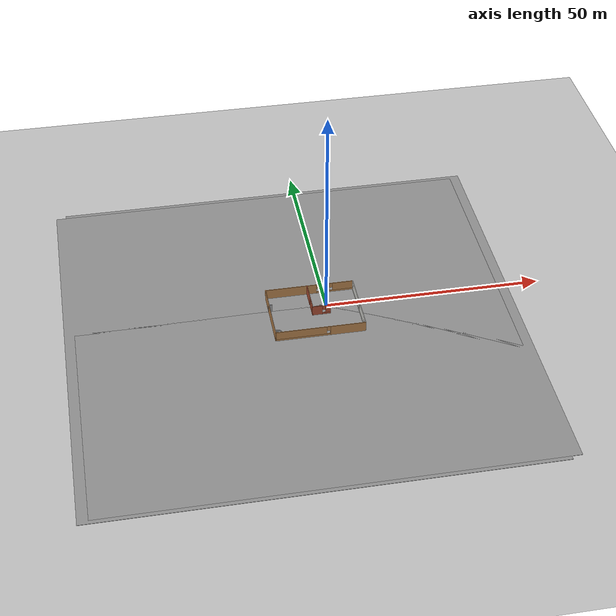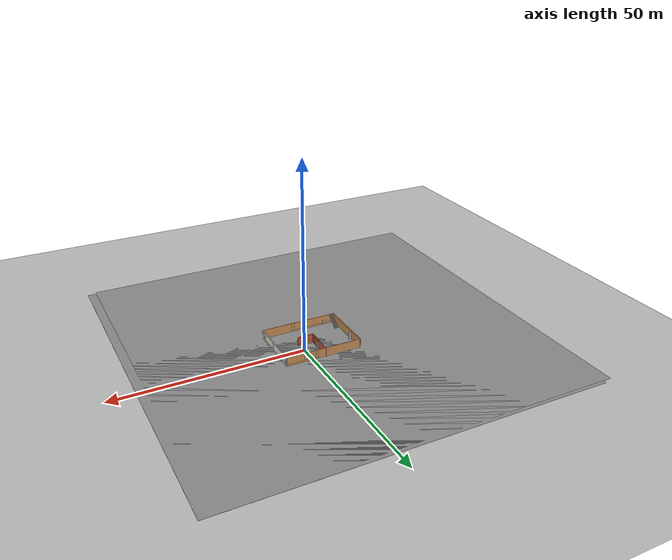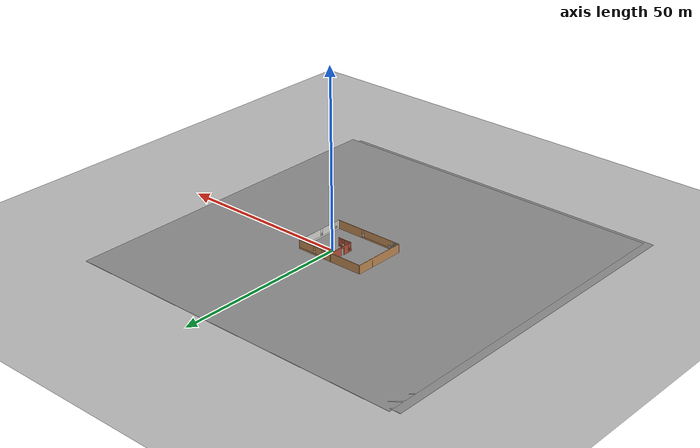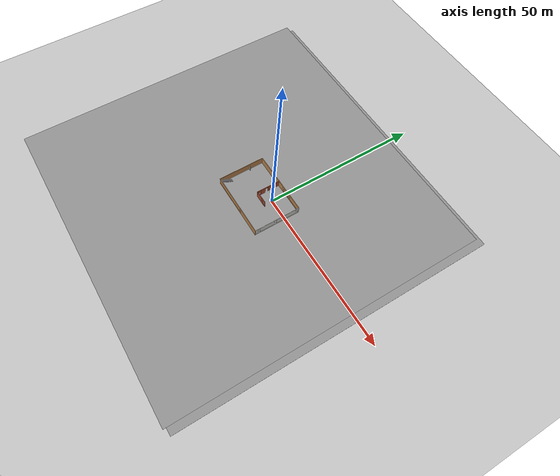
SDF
<sdf version="1.6">
 <world name="default">
  <model name="ground_plane">
   <static>1</static>
   <link name="link">
    <collision name="collision">
     <geometry><plane><normal>0 0 1</normal><size>100 100</size></plane></geometry>
     <surface><friction><ode><mu>100</mu><mu2>50</mu2></ode></friction></surface>
    </collision>
    <visual name="visual">
     <cast_shadows>0</cast_shadows>
     <geometry><plane><normal>0 0 1</normal><size>100 100</size></plane></geometry>
     <material>
      <script><uri>file://media/materials/scripts/gazebo.material</uri><name>Gazebo/Grey</name></script>
     </material>
    </visual>
   </link>
  </model>
  <model name="map_my_world.world">
   <pose>-3.14852 -2.72011 0 0 -0 0</pose>
   <link name="Door_0">
    <collision name="Door_0_Collision">
     <geometry><box><size>0.9 0.17 2</size></box></geometry>
     <pose>0 0 1 0 -0 0</pose>
    </collision>
    <visual name="Door_0_Visual">
     <pose>0 0 1 0 -0 0</pose>
     <geometry><box><size>0.9 0.17 2</size></box></geometry>
     <material>
      <script><uri>file://media/materials/scripts/gazebo.material</uri><name>Gazebo/Grey</name></script>
     </material>
    </visual>
    <pose>-9.84195 2.74935 0 0 -0 0</pose>
   </link>
   <link name="Stairs_0">
    <visual name="Stairs_0_Visual_0">
     <pose>-9.28366 -3.99162 0.083333 0 -0 0</pose>
     <geometry><box><size>1 0.233333 0.166667</size></box></geometry>
     <material>
      <script><uri>file://media/materials/scripts/gazebo.material</uri><name>Gazebo/Grey</name></script>
      <ambient>1 1 1 1</ambient>
     </material>
    </visual>
    <collision name="Stairs_0_Collision_0">
     <geometry><box><size>1 0.233333 0.166667</size></box></geometry>
     <pose>-9.28366 -3.99162 0.083333 0 -0 0</pose>
    </collision>
    <visual name="Stairs_0_Visual_1">
     <pose>-9.28366 -4.22496 0.25 0 -0 0</pose>
     <geometry><box><size>1 0.233333 0.166667</size></box></geometry>
     <material>
      <script><uri>file://media/materials/scripts/gazebo.material</uri><name>Gazebo/Grey</name></script>
      <ambient>1 1 1 1</ambient>
     </material>
    </visual>
    <collision name="Stairs_0_Collision_1">
     <geometry><box><size>1 0.233333 0.166667</size></box></geometry>
     <pose>-9.28366 -4.22496 0.25 0 -0 0</pose>
    </collision>
    <visual name="Stairs_0_Visual_2">
     <pose>-9.28366 -4.45829 0.416667 0 -0 0</pose>
     <geometry><box><size>1 0.233333 0.166667</size></box></geometry>
     <material>
      <script><uri>file://media/materials/scripts/gazebo.material</uri><name>Gazebo/Grey</name></script>
      <ambient>1 1 1 1</ambient>
     </material>
    </visual>
    <collision name="Stairs_0_Collision_2">
     <geometry><box><size>1 0.233333 0.166667</size></box></geometry>
     <pose>-9.28366 -4.45829 0.416667 0 -0 0</pose>
    </collision>
    <visual name="Stairs_0_Visual_3">
     <pose>-9.28366 -4.69162 0.583333 0 -0 0</pose>
     <geometry><box><size>1 0.233333 0.166667</size></box></geometry>
     <material>
      <script><uri>file://media/materials/scripts/gazebo.material</uri><name>Gazebo/Grey</name></script>
      <ambient>1 1 1 1</ambient>
     </material>
    </visual>
    <collision name="Stairs_0_Collision_3">
     <geometry><box><size>1 0.233333 0.166667</size></box></geometry>
     <pose>-9.28366 -4.69162 0.583333 0 -0 0</pose>
    </collision>
    <visual name="Stairs_0_Visual_4">
     <pose>-9.28366 -4.92496 0.75 0 -0 0</pose>
     <geometry><box><size>1 0.233333 0.166667</size></box></geometry>
     <material>
      <script><uri>file://media/materials/scripts/gazebo.material</uri><name>Gazebo/Grey</name></script>
      <ambient>1 1 1 1</ambient>
     </material>
    </visual>
    <collision name="Stairs_0_Collision_4">
     <geometry><box><size>1 0.233333 0.166667</size></box></geometry>
     <pose>-9.28366 -4.92496 0.75 0 -0 0</pose>
    </collision>
    <visual name="Stairs_0_Visual_5">
     <pose>-9.28366 -5.15829 0.916667 0 -0 0</pose>
     <geometry><box><size>1 0.233333 0.166667</size></box></geometry>
     <material>
      <script><uri>file://media/materials/scripts/gazebo.material</uri><name>Gazebo/Grey</name></script>
      <ambient>1 1 1 1</ambient>
     </material>
    </visual>
    <collision name="Stairs_0_Collision_5">
     <geometry><box><size>1 0.233333 0.166667</size></box></geometry>
     <pose>-9.28366 -5.15829 0.916667 0 -0 0</pose>
    </collision>
    <visual name="Stairs_0_Visual_6">
     <pose>-9.28366 -5.39162 1.08333 0 -0 0</pose>
     <geometry><box><size>1 0.233333 0.166667</size></box></geometry>
     <material>
      <script><uri>file://media/materials/scripts/gazebo.material</uri><name>Gazebo/Grey</name></script>
      <ambient>1 1 1 1</ambient>
     </material>
    </visual>
    <collision name="Stairs_0_Collision_6">
     <geometry><box><size>1 0.233333 0.166667</size></box></geometry>
     <pose>-9.28366 -5.39162 1.08333 0 -0 0</pose>
    </collision>
    <visual name="Stairs_0_Visual_7">
     <pose>-9.28366 -5.62496 1.25 0 -0 0</pose>
     <geometry><box><size>1 0.233333 0.166667</size></box></geometry>
     <material>
      <script><uri>file://media/materials/scripts/gazebo.material</uri><name>Gazebo/Grey</name></script>
      <ambient>1 1 1 1</ambient>
     </material>
    </visual>
    <collision name="Stairs_0_Collision_7">
     <geometry><box><size>1 0.233333 0.166667</size></box></geometry>
     <pose>-9.28366 -5.62496 1.25 0 -0 0</pose>
    </collision>
    <visual name="Stairs_0_Visual_8">
     <pose>-9.28366 -5.85829 1.41667 0 -0 0</pose>
     <geometry><box><size>1 0.233333 0.166667</size></box></geometry>
     <material>
      <script><uri>file://media/materials/scripts/gazebo.material</uri><name>Gazebo/Grey</name></script>
      <ambient>1 1 1 1</ambient>
     </material>
    </visual>
    <collision name="Stairs_0_Collision_8">
     <geometry><box><size>1 0.233333 0.166667</size></box></geometry>
     <pose>-9.28366 -5.85829 1.41667 0 -0 0</pose>
    </collision>
    <visual name="Stairs_0_Visual_9">
     <pose>-9.28366 -6.09162 1.58333 0 -0 0</pose>
     <geometry><box><size>1 0.233333 0.166667</size></box></geometry>
     <material>
      <script><uri>file://media/materials/scripts/gazebo.material</uri><name>Gazebo/Grey</name></script>
      <ambient>1 1 1 1</ambient>
     </material>
    </visual>
    <collision name="Stairs_0_Collision_9">
     <geometry><box><size>1 0.233333 0.166667</size></box></geometry>
     <pose>-9.28366 -6.09162 1.58333 0 -0 0</pose>
    </collision>
    <visual name="Stairs_0_Visual_10">
     <pose>-9.28366 -6.32496 1.75 0 -0 0</pose>
     <geometry><box><size>1 0.233333 0.166667</size></box></geometry>
     <material>
      <script><uri>file://media/materials/scripts/gazebo.material</uri><name>Gazebo/Grey</name></script>
      <ambient>1 1 1 1</ambient>
     </material>
    </visual>
    <collision name="Stairs_0_Collision_10">
     <geometry><box><size>1 0.233333 0.166667</size></box></geometry>
     <pose>-9.28366 -6.32496 1.75 0 -0 0</pose>
    </collision>
    <visual name="Stairs_0_Visual_11">
     <pose>-9.28366 -6.55829 1.91667 0 -0 0</pose>
     <geometry><box><size>1 0.233333 0.166667</size></box></geometry>
     <material>
      <script><uri>file://media/materials/scripts/gazebo.material</uri><name>Gazebo/Grey</name></script>
      <ambient>1 1 1 1</ambient>
     </material>
    </visual>
    <collision name="Stairs_0_Collision_11">
     <geometry><box><size>1 0.233333 0.166667</size></box></geometry>
     <pose>-9.28366 -6.55829 1.91667 0 -0 0</pose>
    </collision>
    <visual name="Stairs_0_Visual_12">
     <pose>-9.28366 -6.79162 2.08333 0 -0 0</pose>
     <geometry><box><size>1 0.233333 0.166667</size></box></geometry>
     <material>
      <script><uri>file://media/materials/scripts/gazebo.material</uri><name>Gazebo/Grey</name></script>
      <ambient>1 1 1 1</ambient>
     </material>
    </visual>
    <collision name="Stairs_0_Collision_12">
     <geometry><box><size>1 0.233333 0.166667</size></box></geometry>
     <pose>-9.28366 -6.79162 2.08333 0 -0 0</pose>
    </collision>
    <visual name="Stairs_0_Visual_13">
     <pose>-9.28366 -7.02496 2.25 0 -0 0</pose>
     <geometry><box><size>1 0.233333 0.166667</size></box></geometry>
     <material>
      <script><uri>file://media/materials/scripts/gazebo.material</uri><name>Gazebo/Grey</name></script>
      <ambient>1 1 1 1</ambient>
     </material>
    </visual>
    <collision name="Stairs_0_Collision_13">
     <geometry><box><size>1 0.233333 0.166667</size></box></geometry>
     <pose>-9.28366 -7.02496 2.25 0 -0 0</pose>
    </collision>
    <visual name="Stairs_0_Visual_14">
     <pose>-9.28366 -7.25829 2.41667 0 -0 0</pose>
     <geometry><box><size>1 0.233333 0.166667</size></box></geometry>
     <material>
      <script><uri>file://media/materials/scripts/gazebo.material</uri><name>Gazebo/Grey</name></script>
      <ambient>1 1 1 1</ambient>
     </material>
    </visual>
    <collision name="Stairs_0_Collision_14">
     <geometry><box><size>1 0.233333 0.166667</size></box></geometry>
     <pose>-9.28366 -7.25829 2.41667 0 -0 0</pose>
    </collision>
   </link>
   <link name="Wall_11">
    <pose>0.115 7.40174 0 0 -0 0</pose>
    <visual name="Wall_11_Visual_0">
     <pose>-4.30918 0 1.25 0 -0 0</pose>
     <geometry><box><size>11.6316 0.15 2.5</size></box></geometry>
     <material>
      <script><uri>file://media/materials/scripts/gazebo.material</uri><name>Gazebo/Wood</name></script>
      <ambient>0.435294 0.796078 0.67451 1</ambient>
     </material>
    </visual>
    <collision name="Wall_11_Collision_0">
     <geometry><box><size>11.6316 0.15 2.5</size></box></geometry>
     <pose>-4.30918 0 1.25 0 -0 0</pose>
    </collision>
    <visual name="Wall_11_Visual_1">
     <pose>5.81582 0 0.25 0 -0 0</pose>
     <geometry><box><size>8.61835 0.15 0.5</size></box></geometry>
     <material>
      <script><uri>file://media/materials/scripts/gazebo.material</uri><name>Gazebo/Wood</name></script>
      <ambient>0.435294 0.796078 0.67451 1</ambient>
     </material>
    </visual>
    <collision name="Wall_11_Collision_1">
     <geometry><box><size>8.61835 0.15 0.5</size></box></geometry>
     <pose>5.81582 0 0.25 0 -0 0</pose>
    </collision>
    <visual name="Wall_11_Visual_2">
     <pose>3.41867 0 1.5 0 -0 0</pose>
     <geometry><box><size>2.22405 0.15 2</size></box></geometry>
     <material>
      <script><uri>file://media/materials/scripts/gazebo.material</uri><name>Gazebo/Wood</name></script>
      <ambient>0.435294 0.796078 0.67451 1</ambient>
     </material>
    </visual>
    <collision name="Wall_11_Collision_2">
     <geometry><box><size>2.22405 0.15 2</size></box></geometry>
     <pose>3.41867 0 1.5 0 -0 0</pose>
    </collision>
    <visual name="Wall_11_Visual_3">
     <pose>7.72785 0 1.5 0 -0 0</pose>
     <geometry><box><size>4.7943 0.15 2</size></box></geometry>
     <material>
      <script><uri>file://media/materials/scripts/gazebo.material</uri><name>Gazebo/Wood</name></script>
      <ambient>0.435294 0.796078 0.67451 1</ambient>
     </material>
    </visual>
    <collision name="Wall_11_Collision_3">
     <geometry><box><size>4.7943 0.15 2</size></box></geometry>
     <pose>7.72785 0 1.5 0 -0 0</pose>
    </collision>
    <visual name="Wall_11_Visual_4">
     <pose>1.90665 0 1.9 0 -0 0</pose>
     <geometry><box><size>0.8 0.15 1.2</size></box></geometry>
     <material>
      <script><uri>file://media/materials/scripts/gazebo.material</uri><name>Gazebo/Wood</name></script>
      <ambient>0.435294 0.796078 0.67451 1</ambient>
     </material>
    </visual>
    <collision name="Wall_11_Collision_4">
     <geometry><box><size>0.8 0.15 1.2</size></box></geometry>
     <pose>1.90665 0 1.9 0 -0 0</pose>
    </collision>
    <visual name="Wall_11_Visual_5">
     <pose>4.9307 0 1.9 0 -0 0</pose>
     <geometry><box><size>0.8 0.15 1.2</size></box></geometry>
     <material>
      <script><uri>file://media/materials/scripts/gazebo.material</uri><name>Gazebo/Wood</name></script>
      <ambient>0.435294 0.796078 0.67451 1</ambient>
     </material>
    </visual>
    <collision name="Wall_11_Collision_5">
     <geometry><box><size>0.8 0.15 1.2</size></box></geometry>
     <pose>4.9307 0 1.9 0 -0 0</pose>
    </collision>
   </link>
   <link name="Wall_12">
    <collision name="Wall_12_Collision">
     <geometry><box><size>0.16 0.15 2.5</size></box></geometry>
     <pose>0 0 1.25 0 -0 0</pose>
    </collision>
    <visual name="Wall_12_Visual">
     <pose>0 0 1.25 0 -0 0</pose>
     <geometry><box><size>0.16 0.15 2.5</size></box></geometry>
     <material>
      <script><uri>file://media/materials/scripts/gazebo.material</uri><name>Gazebo/Grey</name></script>
      <ambient>1 1 1 1</ambient>
     </material>
    </visual>
    <pose>10.17 7.40174 0 0 -0 0</pose>
   </link>
   <link name="Wall_13">
    <pose>10.175 -0.023262 0 0 0 -1.5708</pose>
    <visual name="Wall_13_Visual_0">
     <pose>-7.33683 0 1.25 0 -0 0</pose>
     <geometry><box><size>0.326335 0.15 2.5</size></box></geometry>
     <material>
      <script><uri>file://media/materials/scripts/gazebo.material</uri><name>Gazebo/CeilingTiled</name></script>
      <ambient>1 1 1 1</ambient>
     </material>
    </visual>
    <collision name="Wall_13_Collision_0">
     <geometry><box><size>0.326335 0.15 2.5</size></box></geometry>
     <pose>-7.33683 0 1.25 0 -0 0</pose>
    </collision>
    <visual name="Wall_13_Visual_1">
     <pose>0.163168 0 0.25 0 -0 0</pose>
     <geometry><box><size>14.6737 0.15 0.5</size></box></geometry>
     <material>
      <script><uri>file://media/materials/scripts/gazebo.material</uri><name>Gazebo/CeilingTiled</name></script>
      <ambient>1 1 1 1</ambient>
     </material>
    </visual>
    <collision name="Wall_13_Collision_1">
     <geometry><box><size>14.6737 0.15 0.5</size></box></geometry>
     <pose>0.163168 0 0.25 0 -0 0</pose>
    </collision>
    <visual name="Wall_13_Visual_2">
     <pose>-3.05175 0 1.5 0 -0 0</pose>
     <geometry><box><size>6.64383 0.15 2</size></box></geometry>
     <material>
      <script><uri>file://media/materials/scripts/gazebo.material</uri><name>Gazebo/CeilingTiled</name></script>
      <ambient>1 1 1 1</ambient>
     </material>
    </visual>
    <collision name="Wall_13_Collision_2">
     <geometry><box><size>6.64383 0.15 2</size></box></geometry>
     <pose>-3.05175 0 1.5 0 -0 0</pose>
    </collision>
    <visual name="Wall_13_Visual_3">
     <pose>3.41507 0 1.5 0 -0 0</pose>
     <geometry><box><size>4.68982 0.15 2</size></box></geometry>
     <material>
      <script><uri>file://media/materials/scripts/gazebo.material</uri><name>Gazebo/CeilingTiled</name></script>
      <ambient>1 1 1 1</ambient>
     </material>
    </visual>
    <collision name="Wall_13_Collision_3">
     <geometry><box><size>4.68982 0.15 2</size></box></geometry>
     <pose>3.41507 0 1.5 0 -0 0</pose>
    </collision>
    <visual name="Wall_13_Visual_4">
     <pose>7.02999 0 1.5 0 -0 0</pose>
     <geometry><box><size>0.940017 0.15 2</size></box></geometry>
     <material>
      <script><uri>file://media/materials/scripts/gazebo.material</uri><name>Gazebo/CeilingTiled</name></script>
      <ambient>1 1 1 1</ambient>
     </material>
    </visual>
    <collision name="Wall_13_Collision_4">
     <geometry><box><size>0.940017 0.15 2</size></box></geometry>
     <pose>7.02999 0 1.5 0 -0 0</pose>
    </collision>
    <visual name="Wall_13_Visual_5">
     <pose>-6.77367 0 1.9 0 -0 0</pose>
     <geometry><box><size>0.8 0.15 1.2</size></box></geometry>
     <material>
      <script><uri>file://media/materials/scripts/gazebo.material</uri><name>Gazebo/CeilingTiled</name></script>
      <ambient>1 1 1 1</ambient>
     </material>
    </visual>
    <collision name="Wall_13_Collision_5">
     <geometry><box><size>0.8 0.15 1.2</size></box></geometry>
     <pose>-6.77367 0 1.9 0 -0 0</pose>
    </collision>
    <visual name="Wall_13_Visual_6">
     <pose>0.670161 0 1.9 0 -0 0</pose>
     <geometry><box><size>0.8 0.15 1.2</size></box></geometry>
     <material>
      <script><uri>file://media/materials/scripts/gazebo.material</uri><name>Gazebo/CeilingTiled</name></script>
      <ambient>1 1 1 1</ambient>
     </material>
    </visual>
    <collision name="Wall_13_Collision_6">
     <geometry><box><size>0.8 0.15 1.2</size></box></geometry>
     <pose>0.670161 0 1.9 0 -0 0</pose>
    </collision>
    <visual name="Wall_13_Visual_7">
     <pose>6.15998 0 1.9 0 -0 0</pose>
     <geometry><box><size>0.8 0.15 1.2</size></box></geometry>
     <material>
      <script><uri>file://media/materials/scripts/gazebo.material</uri><name>Gazebo/CeilingTiled</name></script>
      <ambient>1 1 1 1</ambient>
     </material>
    </visual>
    <collision name="Wall_13_Collision_7">
     <geometry><box><size>0.8 0.15 1.2</size></box></geometry>
     <pose>6.15998 0 1.9 0 -0 0</pose>
    </collision>
   </link>
   <link name="Wall_14">
    <pose>0 -7.44826 0 0 -0 3.14159</pose>
    <visual name="Wall_14_Visual_0">
     <pose>-6.21951 0 1.25 0 -0 0</pose>
     <geometry><box><size>8.06097 0.15 2.5</size></box></geometry>
     <material>
      <script><uri>file://media/materials/scripts/gazebo.material</uri><name>Gazebo/Wood</name></script>
      <ambient>1 1 1 1</ambient>
     </material>
    </visual>
    <collision name="Wall_14_Collision_0">
     <geometry><box><size>8.06097 0.15 2.5</size></box></geometry>
     <pose>-6.21951 0 1.25 0 -0 0</pose>
    </collision>
    <visual name="Wall_14_Visual_1">
     <pose>4.03049 0 0.25 0 -0 0</pose>
     <geometry><box><size>12.439 0.15 0.5</size></box></geometry>
     <material>
      <script><uri>file://media/materials/scripts/gazebo.material</uri><name>Gazebo/Wood</name></script>
      <ambient>1 1 1 1</ambient>
     </material>
    </visual>
    <collision name="Wall_14_Collision_1">
     <geometry><box><size>12.439 0.15 0.5</size></box></geometry>
     <pose>4.03049 0 0.25 0 -0 0</pose>
    </collision>
    <visual name="Wall_14_Visual_2">
     <pose>4.43049 0 1.5 0 -0 0</pose>
     <geometry><box><size>11.639 0.15 2</size></box></geometry>
     <material>
      <script><uri>file://media/materials/scripts/gazebo.material</uri><name>Gazebo/Wood</name></script>
      <ambient>1 1 1 1</ambient>
     </material>
    </visual>
    <collision name="Wall_14_Collision_2">
     <geometry><box><size>11.639 0.15 2</size></box></geometry>
     <pose>4.43049 0 1.5 0 -0 0</pose>
    </collision>
    <visual name="Wall_14_Visual_3">
     <pose>-1.78903 0 1.9 0 -0 0</pose>
     <geometry><box><size>0.8 0.15 1.2</size></box></geometry>
     <material>
      <script><uri>file://media/materials/scripts/gazebo.material</uri><name>Gazebo/Wood</name></script>
      <ambient>1 1 1 1</ambient>
     </material>
    </visual>
    <collision name="Wall_14_Collision_3">
     <geometry><box><size>0.8 0.15 1.2</size></box></geometry>
     <pose>-1.78903 0 1.9 0 -0 0</pose>
    </collision>
   </link>
   <link name="Wall_15">
    <collision name="Wall_15_Collision">
     <geometry><box><size>15 0.15 2.5</size></box></geometry>
     <pose>0 0 1.25 0 -0 0</pose>
    </collision>
    <visual name="Wall_15_Visual">
     <pose>0 0 1.25 0 -0 0</pose>
     <geometry><box><size>15 0.15 2.5</size></box></geometry>
     <material>
      <script><uri>file://media/materials/scripts/gazebo.material</uri><name>Gazebo/Wood</name></script>
      <ambient>0.435294 0.796078 0.67451 1</ambient>
     </material>
    </visual>
    <pose>-10.175 -0.023262 0 0 -0 1.5708</pose>
   </link>
   <link name="Wall_17">
    <pose>-0.537169 3.64826 0 0 0 -1.5708</pose>
    <visual name="Wall_17_Visual_0">
     <pose>-1.85261 0 1.25 0 -0 0</pose>
     <geometry><box><size>4.04477 0.15 2.5</size></box></geometry>
     <material>
      <script><uri>file://media/materials/scripts/gazebo.material</uri><name>Gazebo/Bricks</name></script>
      <ambient>1 1 1 1</ambient>
     </material>
    </visual>
    <collision name="Wall_17_Collision_0">
     <geometry><box><size>4.04477 0.15 2.5</size></box></geometry>
     <pose>-1.85261 0 1.25 0 -0 0</pose>
    </collision>
    <visual name="Wall_17_Visual_1">
     <pose>1.85439 0 1.25 0 -0 0</pose>
     <geometry><box><size>1.56924 0.15 2.5</size></box></geometry>
     <material>
      <script><uri>file://media/materials/scripts/gazebo.material</uri><name>Gazebo/Bricks</name></script>
      <ambient>1 1 1 1</ambient>
     </material>
    </visual>
    <collision name="Wall_17_Collision_1">
     <geometry><box><size>1.56924 0.15 2.5</size></box></geometry>
     <pose>1.85439 0 1.25 0 -0 0</pose>
    </collision>
    <visual name="Wall_17_Visual_2">
     <pose>3.25701 0 0.25 0 -0 0</pose>
     <geometry><box><size>1.23598 0.15 0.5</size></box></geometry>
     <material>
      <script><uri>file://media/materials/scripts/gazebo.material</uri><name>Gazebo/Bricks</name></script>
      <ambient>1 1 1 1</ambient>
     </material>
    </visual>
    <collision name="Wall_17_Collision_2">
     <geometry><box><size>1.23598 0.15 0.5</size></box></geometry>
     <pose>3.25701 0 0.25 0 -0 0</pose>
    </collision>
    <visual name="Wall_17_Visual_3">
     <pose>3.65701 0 1.5 0 -0 0</pose>
     <geometry><box><size>0.435985 0.15 2</size></box></geometry>
     <material>
      <script><uri>file://media/materials/scripts/gazebo.material</uri><name>Gazebo/Bricks</name></script>
      <ambient>1 1 1 1</ambient>
     </material>
    </visual>
    <collision name="Wall_17_Collision_3">
     <geometry><box><size>0.435985 0.15 2</size></box></geometry>
     <pose>3.65701 0 1.5 0 -0 0</pose>
    </collision>
    <visual name="Wall_17_Visual_4">
     <pose>3.03902 0 1.9 0 -0 0</pose>
     <geometry><box><size>0.8 0.15 1.2</size></box></geometry>
     <material>
      <script><uri>file://media/materials/scripts/gazebo.material</uri><name>Gazebo/Bricks</name></script>
      <ambient>1 1 1 1</ambient>
     </material>
    </visual>
    <collision name="Wall_17_Collision_4">
     <geometry><box><size>0.8 0.15 1.2</size></box></geometry>
     <pose>3.03902 0 1.9 0 -0 0</pose>
    </collision>
    <visual name="Wall_17_Visual_5">
     <pose>0.619772 0 2.25 0 -0 0</pose>
     <geometry><box><size>0.9 0.15 0.5</size></box></geometry>
     <material>
      <script><uri>file://media/materials/scripts/gazebo.material</uri><name>Gazebo/Bricks</name></script>
      <ambient>1 1 1 1</ambient>
     </material>
    </visual>
    <collision name="Wall_17_Collision_5">
     <geometry><box><size>0.9 0.15 0.5</size></box></geometry>
     <pose>0.619772 0 2.25 0 -0 0</pose>
    </collision>
   </link>
   <link name="Wall_18">
    <pose>1.51283 -0.151738 0 0 -0 0</pose>
    <visual name="Wall_18_Visual_0">
     <pose>-0.98483 0 1.25 0 -0 0</pose>
     <geometry><box><size>2.28034 0.15 2.5</size></box></geometry>
     <material>
      <script><uri>file://media/materials/scripts/gazebo.material</uri><name>Gazebo/Bricks</name></script>
      <ambient>1 1 1 1</ambient>
     </material>
    </visual>
    <collision name="Wall_18_Collision_0">
     <geometry><box><size>2.28034 0.15 2.5</size></box></geometry>
     <pose>-0.98483 0 1.25 0 -0 0</pose>
    </collision>
    <visual name="Wall_18_Visual_1">
     <pose>1.14017 0 0.25 0 -0 0</pose>
     <geometry><box><size>1.96966 0.15 0.5</size></box></geometry>
     <material>
      <script><uri>file://media/materials/scripts/gazebo.material</uri><name>Gazebo/Bricks</name></script>
      <ambient>1 1 1 1</ambient>
     </material>
    </visual>
    <collision name="Wall_18_Collision_1">
     <geometry><box><size>1.96966 0.15 0.5</size></box></geometry>
     <pose>1.14017 0 0.25 0 -0 0</pose>
    </collision>
    <visual name="Wall_18_Visual_2">
     <pose>1.54017 0 1.5 0 -0 0</pose>
     <geometry><box><size>1.16966 0.15 2</size></box></geometry>
     <material>
      <script><uri>file://media/materials/scripts/gazebo.material</uri><name>Gazebo/Bricks</name></script>
      <ambient>1 1 1 1</ambient>
     </material>
    </visual>
    <collision name="Wall_18_Collision_2">
     <geometry><box><size>1.16966 0.15 2</size></box></geometry>
     <pose>1.54017 0 1.5 0 -0 0</pose>
    </collision>
    <visual name="Wall_18_Visual_3">
     <pose>0.555339 0 1.9 0 -0 0</pose>
     <geometry><box><size>0.8 0.15 1.2</size></box></geometry>
     <material>
      <script><uri>file://media/materials/scripts/gazebo.material</uri><name>Gazebo/Bricks</name></script>
      <ambient>1 1 1 1</ambient>
     </material>
    </visual>
    <collision name="Wall_18_Collision_3">
     <geometry><box><size>0.8 0.15 1.2</size></box></geometry>
     <pose>0.555339 0 1.9 0 -0 0</pose>
    </collision>
   </link>
   <link name="Window_1">
    <collision name="Window_1_Collision">
     <geometry><box><size>0.8 0.17 0.8</size></box></geometry>
     <pose>0 0 0.4 0 -0 0</pose>
    </collision>
    <visual name="Window_1_Visual">
     <pose>0 0 0.4 0 -0 0</pose>
     <geometry><box><size>0.8 0.17 0.8</size></box></geometry>
     <material>
      <script><uri>file://media/materials/scripts/gazebo.material</uri><name>Gazebo/Grey</name></script>
     </material>
    </visual>
    <pose>-7.28314 -7.20677 0.5 0 -0 0</pose>
   </link>
   <static>1</static>
  </model>
  <model name="ground_plane_0">
   <static>1</static>
   <link name="link">
    <collision name="collision">
     <geometry><plane><normal>0 0 1</normal><size>100 100</size></plane></geometry>
     <surface><friction><ode><mu>100</mu><mu2>50</mu2></ode></friction></surface>
    </collision>
    <visual name="visual">
     <cast_shadows>0</cast_shadows>
     <geometry><plane><normal>0 0 1</normal><size>100 100</size></plane></geometry>
     <material>
      <script><uri>file://media/materials/scripts/gazebo.material</uri><name>Gazebo/Grey</name></script>
     </material>
    </visual>
   </link>
   <pose>-9.60054 -6.20571 0 0 -0 0</pose>
  </model>
  <model name="ground_plane_1">
   <static>1</static>
   <link name="link">
    <collision name="collision">
     <geometry><plane><normal>0 0 1</normal><size>100 100</size></plane></geometry>
     <surface><friction><ode><mu>100</mu><mu2>50</mu2></ode></friction></surface>
    </collision>
    <visual name="visual">
     <cast_shadows>0</cast_shadows>
     <geometry><plane><normal>0 0 1</normal><size>100 100</size></plane></geometry>
     <material>
      <script><uri>file://media/materials/scripts/gazebo.material</uri><name>Gazebo/Grey</name></script>
     </material>
    </visual>
   </link>
   <pose>-7.29819 -5.30691 0 0 -0 0</pose>
  </model>
 </world>
</sdf>
